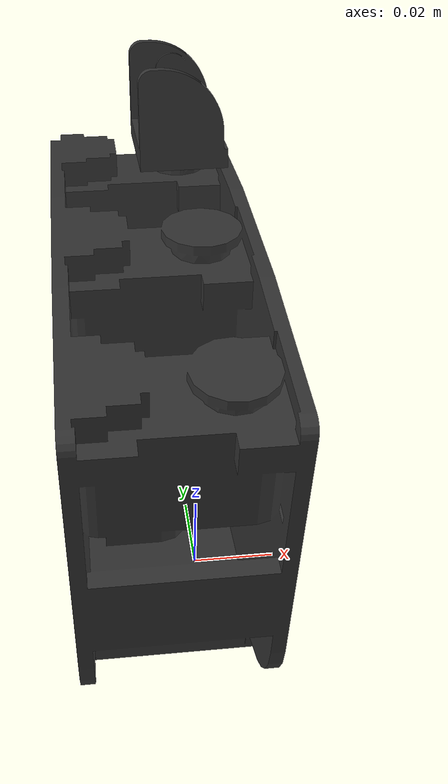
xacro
<?xml version="1.0"?>

<robot name="simple_robot" xmlns:xacro="http://www.ros.org/wiki/xacro">

    <link name="world"/>

    <joint name="fixed" type="fixed">
      <parent link="world"/>
      <child link="base_link"/>
    </joint>
    <!-- Base link -->

    <!-- PALM -->
    <link name="base_link">
        <visual>
            <origin rpy="0.0 0.0 0.0" xyz="0.0 0.0 0.095 "/>
            <geometry>
                <mesh filename="package://simple_robot_description/meshes/base_link.dae"/>
            </geometry>
            <material name="black">
                <color rgba="0.2 0.2 0.2 1"/>
            </material>
        </visual>
        <collision>
            <origin rpy="0.0 0.0 0.0" xyz="0.0 0.0 0.0425"/>
            <geometry>
                <box size="0.05 0.09 0.09"/>
            </geometry>
        </collision>
        <inertial>
          <origin xyz="-0.009362 -0.000854 0.056774" rpy="0.0 0.0 0.0"/>
          <mass value="0.4154"/>
          <inertia
              ixx="0.0001" ixy="0.0" ixz="0.0"
              iyy="0.0001" iyz="0.0"
              izz="0.0001"/>
        </inertial>
    </link>

        <!-- FINGER 0 -->

    <joint name="finger0_joint_0" type="revolute">
        <parent link="base_link"/>
        <child link="finger0_link_0"/>
        <origin rpy="-0.08726646255 0 0.0082"
                xyz="0.0 0.0435 0.093"/>
        <axis xyz="0 0 1"/>
        <limit effort="15" velocity="7"
               lower="-0.57"
               upper="0.57"/>
        <dynamics damping="3" friction="10"/>
    </joint>

    <!-- [LINK 0] -->
    <link name="finger0_link_0">
        <visual>
            <origin rpy="0.0 0.0 0.0" xyz="0 0 0"/>
            <geometry>
                <mesh filename="package://simple_robot_description/meshes/link_0.0.dae"/>
            </geometry>
            <material name="black"/>
        </visual>
        <collision>
            <origin rpy="0.0 0.0 0.0" xyz="0 0 0.015"/>
            <geometry>
                <box size="0.03 0.03 0.03"/>
            </geometry>
        </collision>
        <inertial>
          <mass value="0.0119" />
          <origin xyz="-0.0004731 -0.001 0.016" rpy="0.0 0.0 0.0"/>
          <inertia ixx="0.0001" ixy="0.0" ixz="0.0"
                   iyy="0.0001" iyz="0.0"
                   izz="0.0001" />
        </inertial>
    </link>

<!--  Finger0 joint 0 -->
  <transmission name="tran0_0">
      <type>transmission_interface/SimpleTransmission</type>
      <joint name="finger0_joint_0">
        <hardwareInterface>hardware_interface/PositionJointInterface</hardwareInterface>
      </joint>
      <actuator name="motor0_0">
        <hardwareInterface>hardware_interface/PositionJointInterface</hardwareInterface>
        <mechanicalReduction>1</mechanicalReduction>
      </actuator>
  </transmission>

<!--  //////////// Gazebo plugin //////////// -->

  <gazebo>
    <plugin name="gazebo_ros_control" filename="libgazebo_ros_control.so">
         <robotNamespace>/simple_robot</robotNamespace>
         <robotSimType>gazebo_ros_control/DefaultRobotHWSim</robotSimType>
     </plugin>
     <self_collide>1</self_collide>
  </gazebo>

</robot>
